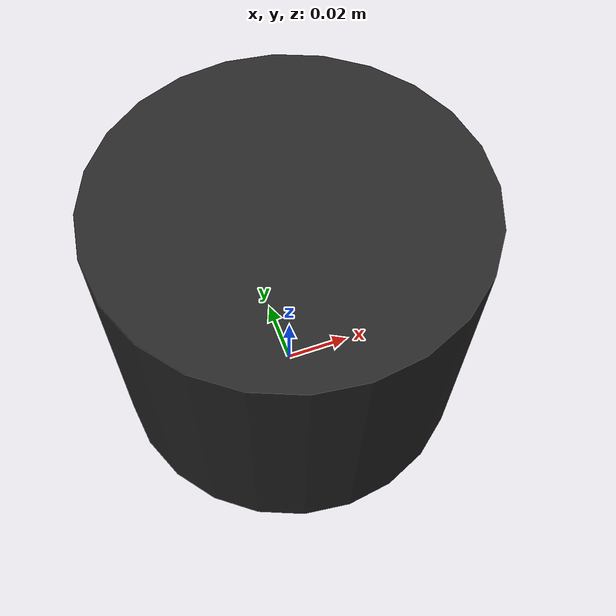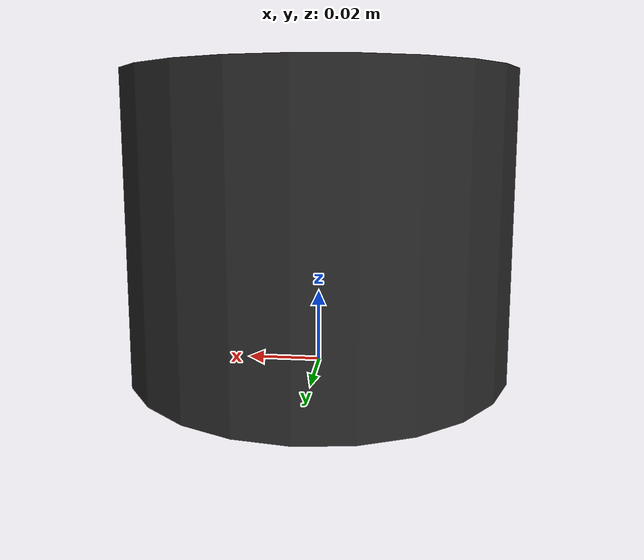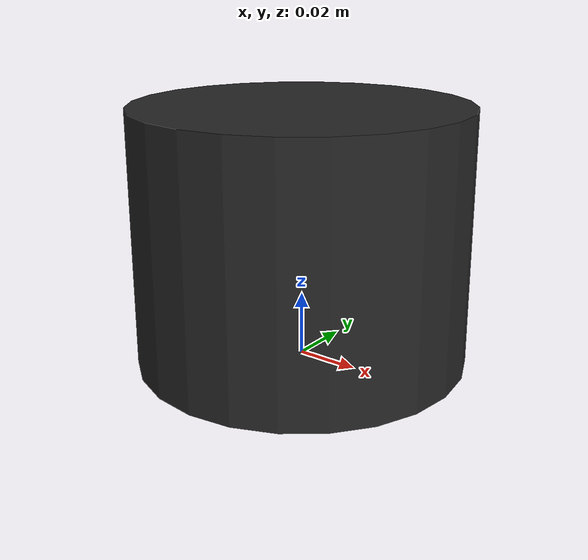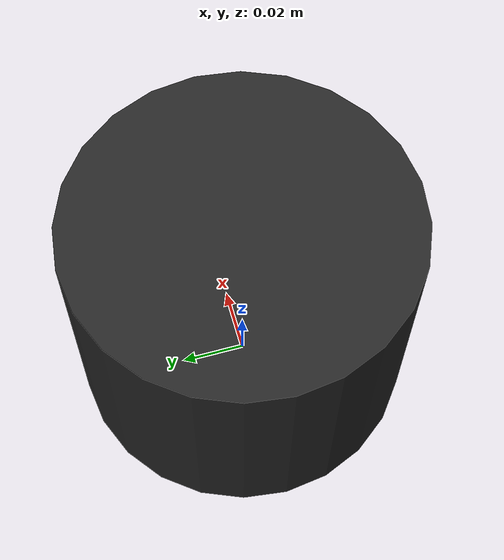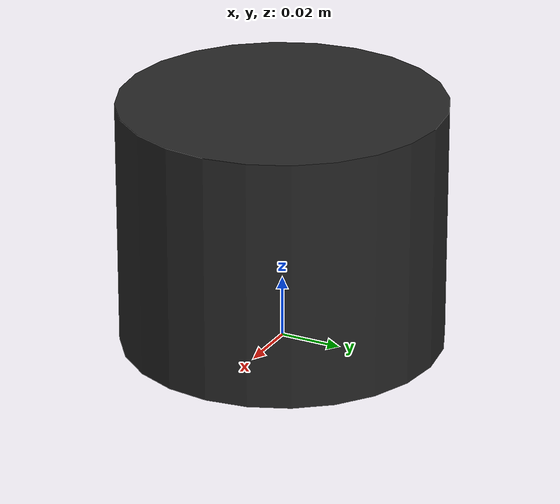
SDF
<?xml version="1.0"?>
<sdf version="1.6">
  <model name="velodyne_vlp16">
    <static>false</static>

    <link name="link">
      <inertial>
        <mass>0.20</mass>
        <inertia>
          <ixx>0.0002</ixx>
          <iyy>0.0002</iyy>
          <izz>0.0002</izz>
        </inertia>
      </inertial>

      <collision name="collision">
        <pose>0 0 0.04 0 0 0</pose>
        <geometry>
          <cylinder>
            <radius>0.052</radius>
            <length>0.08</length>
          </cylinder>
        </geometry>
      </collision>

      <visual name="visual">
        <pose>0 0 0.04 0 0 0</pose>
        <geometry>
          <cylinder>
            <radius>0.052</radius>
            <length>0.08</length>
          </cylinder>
        </geometry>
        <material>
          <ambient>0.1 0.1 0.1 1</ambient>
          <diffuse>0.15 0.15 0.15 1</diffuse>
        </material>
      </visual>

      <sensor name="velodyne" type="ray">
        <pose>0 0 0.08 0 0 0</pose>
        <always_on>true</always_on>
        <visualize>false</visualize>
        <update_rate>10</update_rate>

        <ray>
          <scan>
            <horizontal>
              <samples>440</samples>
              <resolution>1</resolution>
              <min_angle>-3.1415926</min_angle>
              <max_angle>3.1415926</max_angle>
            </horizontal>

            <vertical>
              <samples>16</samples>
              <resolution>1</resolution>
              <min_angle>-0.261799</min_angle>
              <max_angle>0.261799</max_angle>
            </vertical>
          </scan>

          <range>
            <min>0.30</min>
            <max>30.0</max>
            <resolution>0.01</resolution>
          </range>

          <noise>
            <type>gaussian</type>
            <mean>0.0</mean>
            <stddev>0.01</stddev>
          </noise>
        </ray>

        <plugin
          name="gazebo_ros_velodyne_controller"
          filename="libgazebo_ros_velodyne_laser.so">
          <topicName>/velodyne_points</topicName>
          <frameName>velodyne_link</frameName>
          <organize_cloud>false</organize_cloud>
          <min_range>0.30</min_range>
          <max_range>30.0</max_range>
          <gaussianNoise>0.01</gaussianNoise>
        </plugin>
      </sensor>
    </link>
  </model>
</sdf>
